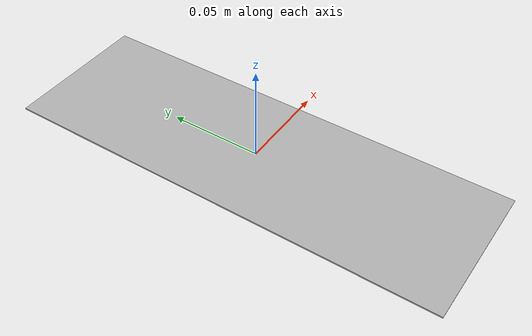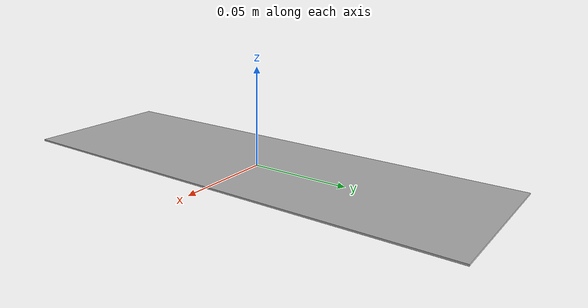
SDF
<?xml version="1.0" ?>
<sdf version="1.6">
  <model name="smallnumber1">
    <pose>0 0 0.001 0 0 0</pose>
    <static>true</static>
    <link name="link">
      <visual name="visual">
        <geometry>
          <mesh>
            <uri>model://number1/meshes/number.dae</uri>
            <scale>0.1 0.3 0.001</scale>
          </mesh>
        </geometry>
        <material>
          <script>
            <uri>model://number1/materials/scripts</uri>
            <uri>model://number1/materials/textures</uri>
            <name>Number/One</name>
          </script>
        </material>
      </visual>
    </link>
  </model>
</sdf>
